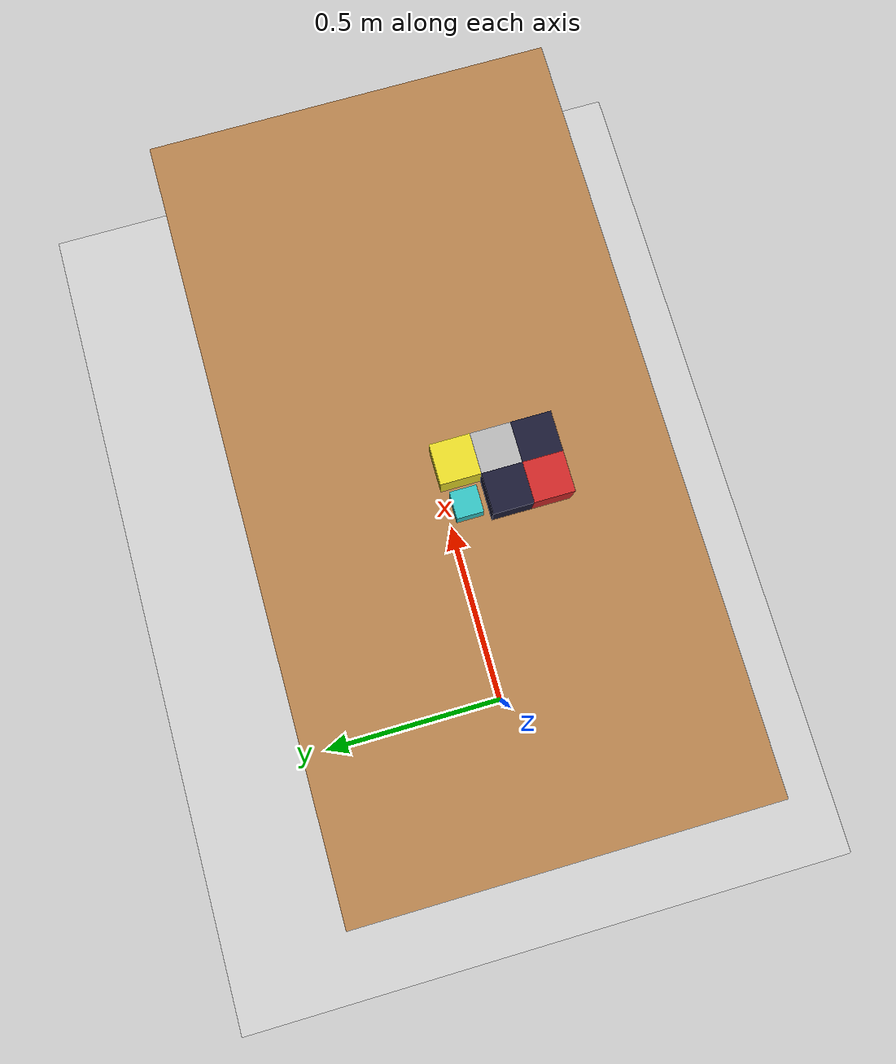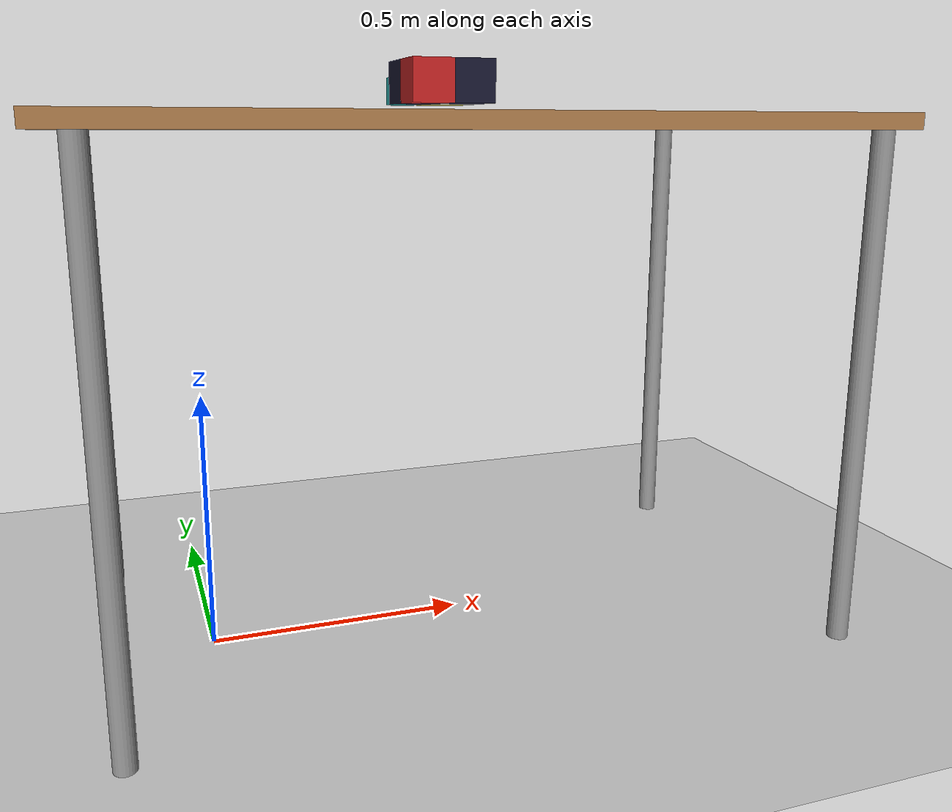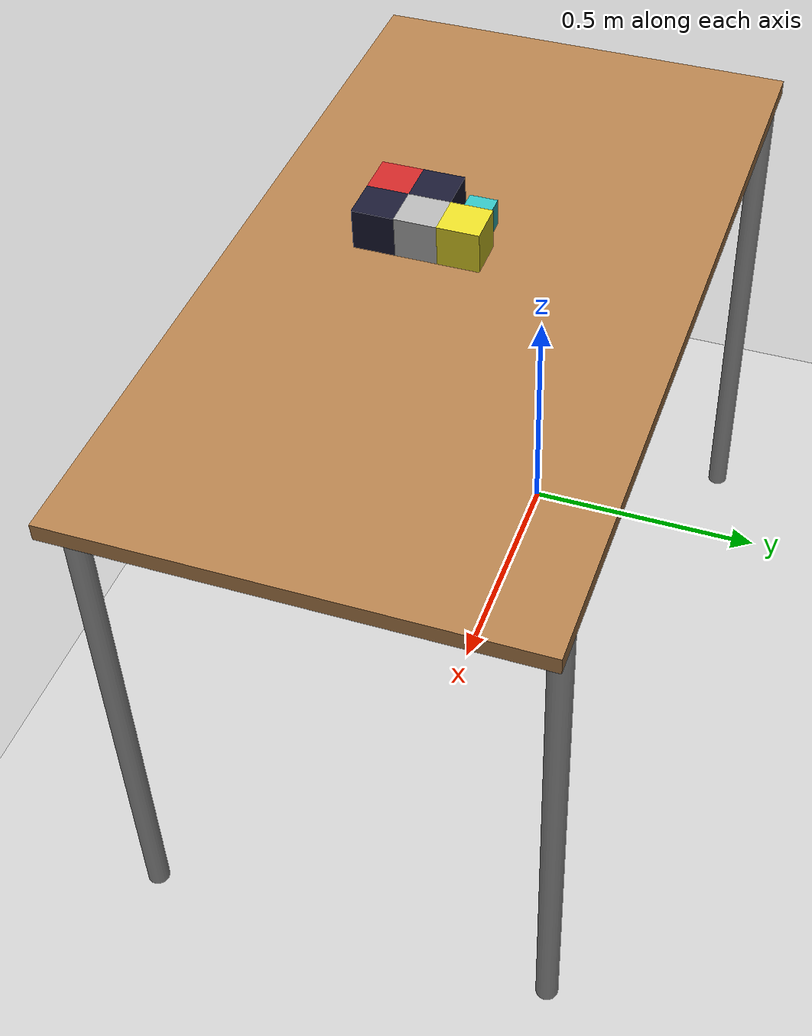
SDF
<?xml version="1.0" ?>
<sdf version="1.6">
  <world name="default">

    <light type="directional" name="light">
      <light_on>true</light_on>
      <pose>0 0 2 0 0 0</pose>
      <diffuse>0.5 0.5 0.5 1</diffuse>
      <specular>.1 .1 .1 1</specular>
      <cast_shadows>false</cast_shadows>
    </light>

    <include>
      <uri>model://ground_plane</uri>
    </include>

    <include>
      <uri>model://sun</uri>
    </include>

    <include>
      <uri>model://big_table</uri>
      <name>table</name>
      <pose>0.5 0 0 0 0 0</pose>
    </include>

    <include>
      <name>cube_red</name>
      <uri>model://colored_large_cubes/cube_red</uri>
      <pose>0.4 -0.15 1.03 0 0 0</pose>
    </include>

    <include>
      <name>cube_blue</name>
      <uri>model://colored_large_cubes/cube_blue</uri>
      <pose>0.475 -0.15 1.03 0 0 0</pose>
    </include>

    <include>
      <name>cube_indigo</name>
      <uri>model://colored_large_cubes/cube_indigo</uri>
      <pose>0.4 -0.075 1.03 0 0 0</pose>
    </include>

    <include>
      <name>cube_pink</name>
      <uri>model://colored_large_cubes/cube_pink</uri>
      <pose>0.475 -0.075 1.03 0 0 0</pose>
    </include>

    <include>
      <name>cube_turquoise</name>
      <uri>model://colored_large_cubes/cube_turquoise</uri>
      <pose>0.4 0.0 1.03 0 0 0</pose>
    </include>

    <include>
      <name>cube_yellow</name>
      <uri>model://colored_large_cubes/cube_yellow</uri>
      <pose>0.475 0.0 1.03 0 0 0</pose>
    </include>

    <physics type="ode">
      <real_time_update_rate>1000.0</real_time_update_rate>
    </physics>

    <gravity>
      0.0 0.0 -9.81
    </gravity>

    <gui fullscreen='0'>
    </gui>

  </world>
</sdf>

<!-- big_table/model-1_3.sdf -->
<sdf version="1.3">
  <model name="big_table">
    <static>true</static>
    <link name="link">
      <collision name="surface">
        <pose>0 0 1.0 0 0 0</pose>
        <geometry>
          <box>
            <size>1.5 0.8 0.03</size>
          </box>
        </geometry>
        <surface>
          <friction>
            <ode>
              <mu>0.6</mu>
              <mu2>0.6</mu2>
            </ode>
          </friction>
        </surface>
      </collision>
      <visual name="visual1">
        <pose>0 0 1.0 0 0 0</pose>
        <geometry>
          <box>
            <size>1.5 0.8 0.03</size>
          </box>
        </geometry>
        <material>
          <script>
            <uri>file://media/materials/scripts/gazebo.material</uri>
            <name>Gazebo/Wood</name>
          </script>
        </material>
      </visual>
      <collision name="front_left_leg">
        <pose>0.68 0.38 0.5 0 0 0</pose>
        <geometry>
          <cylinder>
            <radius>0.02</radius>
            <length>1.0</length>
          </cylinder>
        </geometry>
      </collision>
      <visual name="front_left_leg">
        <pose>0.68 0.38 0.5 0 0 0</pose>
        <geometry>
          <cylinder>
            <radius>0.02</radius>
            <length>1.0</length>
          </cylinder>
        </geometry>
        <material>
          <script>
            <uri>file://media/materials/scripts/gazebo.material</uri>
            <name>Gazebo/Grey</name>
          </script>
        </material>
      </visual>
      <collision name="front_right_leg">
        <pose>0.68 -0.38 0.5 0 0 0</pose>
        <geometry>
          <cylinder>
            <radius>0.02</radius>
            <length>1.0</length>
          </cylinder>
        </geometry>
      </collision>
      <visual name="front_right_leg">
        <pose>0.68 -0.38 0.5 0 0 0</pose>
        <geometry>
          <cylinder>
            <radius>0.02</radius>
            <length>1.0</length>
          </cylinder>
        </geometry>
        <material>
          <script>
            <uri>file://media/materials/scripts/gazebo.material</uri>
            <name>Gazebo/Grey</name>
          </script>
        </material>
      </visual>
      <collision name="back_right_leg">
        <pose>-0.68 -0.38 0.5 0 0 0</pose>
        <geometry>
          <cylinder>
            <radius>0.02</radius>
            <length>1.0</length>
          </cylinder>
        </geometry>
      </collision>
      <visual name="back_right_leg">
        <pose>-0.68 -0.38 0.5 0 0 0</pose>
        <geometry>
          <cylinder>
            <radius>0.02</radius>
            <length>1.0</length>
          </cylinder>
        </geometry>
        <material>
          <script>
            <uri>file://media/materials/scripts/gazebo.material</uri>
            <name>Gazebo/Grey</name>
          </script>
        </material>
      </visual>
      <collision name="back_left_leg">
        <pose>-0.68 0.38 0.5 0 0 0</pose>
        <geometry>
          <cylinder>
            <radius>0.02</radius>
            <length>1.0</length>
          </cylinder>
        </geometry>
      </collision>
      <visual name="back_left_leg">
        <pose>-0.68 0.38 0.5 0 0 0</pose>
        <geometry>
          <cylinder>
            <radius>0.02</radius>
            <length>1.0</length>
          </cylinder>
        </geometry>
        <material>
          <script>
            <uri>file://media/materials/scripts/gazebo.material</uri>
            <name>Gazebo/Grey</name>
          </script>
        </material>
      </visual>
    </link>
  </model>
</sdf>

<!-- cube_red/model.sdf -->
<sdf version="1.5">
  <model name="cube_red">
    <link name="link">
      <pose>0 0 0.0375 0 0 0</pose>
      <inertial>
        <mass>0.2249</mass>
        <inertia>
          <ixx>0.00021084374999999999</ixx>
          <ixy>0</ixy>
          <ixz>0</ixz>
          <iyy>0.00021084374999999999</iyy>
          <iyz>0</iyz>
          <izz>0.00021084374999999999</izz>
        </inertia>
      </inertial>

      <collision name="collision">
        <geometry>
          <box>
            <size>0.075 0.075 0.075</size>
          </box>
        </geometry>
        <surface>
          <contact>
            <!-- Red Pine coefficients for longitudinal axis of the wood
                 according to:
                 http://www.fpl.fs.fed.us/documnts/fplgtr/fplgtr113/ch04.pdf -->
            <poissons_ratio>0.347</poissons_ratio>
            <elastic_modulus>8.8e+09</elastic_modulus>
            <ode>
              <kp>100000</kp>
              <kd>100</kd>
              <max_vel>100.0</max_vel>
              <min_depth>0.001</min_depth>
            </ode>
          </contact>
          <friction>
            <torsional>
              <coefficient>1.0</coefficient>
              <use_patch_radius>0</use_patch_radius>
              <surface_radius>0.01</surface_radius>
            </torsional>
          </friction>
        </surface>
      </collision>

      <visual name="visual">
        <geometry>
          <box>
            <size>0.075 0.075 0.075</size>
          </box>
        </geometry>
        <material>
          <!-- Wheel material -->
          <script>
            <uri>file://media/materials/scripts/gazebo.material</uri>
            <name>Gazebo/Red</name>
          </script>
          <ambient>1 0 0 1</ambient>
          <diffuse>0.1 0.1 0.2 1</diffuse>
          <specular>0 0 0 0</specular>
          <emissive>0 0 0 1</emissive>
        </material> <!-- End wheel material -->

      </visual>

    </link>
  </model>
</sdf>

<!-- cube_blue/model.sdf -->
<sdf version="1.5">
  <model name="cube_red">
    <link name="link">
      <pose>0 0 0.0375 0 0 0</pose>
      <inertial>
        <mass>0.2249</mass>
        <inertia>
          <ixx>0.00021084374999999999</ixx>
          <ixy>0</ixy>
          <ixz>0</ixz>
          <iyy>0.00021084374999999999</iyy>
          <iyz>0</iyz>
          <izz>0.00021084374999999999</izz>
        </inertia>
      </inertial>

      <collision name="collision">
        <geometry>
          <box>
            <size>0.075 0.075 0.075</size>
          </box>
        </geometry>
        <surface>
          <contact>
            <!-- Red Pine coefficients for longitudinal axis of the wood
                 according to:
                 http://www.fpl.fs.fed.us/documnts/fplgtr/fplgtr113/ch04.pdf -->
            <poissons_ratio>0.347</poissons_ratio>
            <elastic_modulus>8.8e+09</elastic_modulus>
            <ode>
              <kp>100000</kp>
              <kd>100</kd>
              <max_vel>100.0</max_vel>
              <min_depth>0.001</min_depth>
            </ode>
          </contact>
          <friction>
            <torsional>
              <coefficient>1.0</coefficient>
              <use_patch_radius>0</use_patch_radius>
              <surface_radius>0.01</surface_radius>
            </torsional>
          </friction>
        </surface>
      </collision>

      <visual name="visual">
        <geometry>
          <box>
            <size>0.075 0.075 0.075</size>
          </box>
        </geometry>
        <material>
          <!-- Wheel material -->
          <ambient>0 0 1 1</ambient>
          <diffuse>0.1 0.1 0.2 1</diffuse>
          <specular>0 0 0 0</specular>
          <emissive>0 0 0 1</emissive>
        </material> <!-- End wheel material -->

      </visual>

    </link>
  </model>
</sdf>

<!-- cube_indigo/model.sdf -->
<sdf version="1.5">
  <model name="cube_7_5cm">
    <link name="link">
      <pose>0 0 0.0375 0 0 0</pose>
      <inertial>
        <mass>0.2249</mass>
        <inertia>
          <ixx>0.00021084374999999999</ixx>
          <ixy>0</ixy>
          <ixz>0</ixz>
          <iyy>0.00021084374999999999</iyy>
          <iyz>0</iyz>
          <izz>0.00021084374999999999</izz>
        </inertia>
      </inertial>

      <collision name="collision">
        <geometry>
          <box>
            <size>0.075 0.075 0.075</size>
          </box>
        </geometry>
        <surface>
          <contact>
            <!-- Red Pine coefficients for longitudinal axis of the wood
                 according to:
                 http://www.fpl.fs.fed.us/documnts/fplgtr/fplgtr113/ch04.pdf -->
            <poissons_ratio>0.347</poissons_ratio>
            <elastic_modulus>8.8e+09</elastic_modulus>
            <ode>
              <kp>100000</kp>
              <kd>100</kd>
              <max_vel>100.0</max_vel>
              <min_depth>0.001</min_depth>
            </ode>
          </contact>
          <friction>
            <torsional>
              <coefficient>1.0</coefficient>
              <use_patch_radius>0</use_patch_radius>
              <surface_radius>0.01</surface_radius>
            </torsional>
          </friction>
        </surface>
      </collision>

      <visual name="visual">
        <geometry>
          <box>
            <size>0.075 0.075 0.075</size>
          </box>
        </geometry>

        <material>
          <!-- Wheel material -->
          <ambient>0.352 0.031 0.650 1</ambient>
          <diffuse>0.1 0.1 0.2 1</diffuse>
          <specular>0 0 0 0</specular>
          <emissive>0 0 0 1</emissive>
        </material> <!-- End wheel material -->

      </visual>

    </link>
  </model>
</sdf>

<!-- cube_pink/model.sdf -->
<sdf version="1.5">
  <model name="cube_7_5cm">
    <link name="link">
      <pose>0 0 0.0375 0 0 0</pose>
      <inertial>
        <mass>0.2249</mass>
        <inertia>
          <ixx>0.00021084374999999999</ixx>
          <ixy>0</ixy>
          <ixz>0</ixz>
          <iyy>0.00021084374999999999</iyy>
          <iyz>0</iyz>
          <izz>0.00021084374999999999</izz>
        </inertia>
      </inertial>

      <collision name="collision">
        <geometry>
          <box>
            <size>0.075 0.075 0.075</size>
          </box>
        </geometry>
        <surface>
          <contact>
            <!-- Red Pine coefficients for longitudinal axis of the wood
                 according to:
                 http://www.fpl.fs.fed.us/documnts/fplgtr/fplgtr113/ch04.pdf -->
            <poissons_ratio>0.347</poissons_ratio>
            <elastic_modulus>8.8e+09</elastic_modulus>
            <ode>
              <kp>100000</kp>
              <kd>100</kd>
              <max_vel>100.0</max_vel>
              <min_depth>0.001</min_depth>
            </ode>
          </contact>
          <friction>
            <torsional>
              <coefficient>1.0</coefficient>
              <use_patch_radius>0</use_patch_radius>
              <surface_radius>0.01</surface_radius>
            </torsional>
          </friction>
        </surface>
      </collision>

      <visual name="visual">
        <geometry>
          <box>
            <size>0.075 0.075 0.075</size>
          </box>
        </geometry>

        <material>
          <!-- Wheel material -->
          <ambient>1 0 1 1</ambient>
          <diffuse>0.7 0.7 0.7 1</diffuse>
          <specular>0.01 0.01 0.01 1</specular>
          <emissive>0 0 0 1</emissive>
        </material> <!-- End wheel material -->

      </visual>

    </link>
  </model>
</sdf>

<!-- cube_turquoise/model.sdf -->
<sdf version="1.5">
  <model name="cube_turquoise">
    <link name="link">
      <pose>0 0 0.025 0 0 0</pose>
      <inertial>
        <mass>0.0565</mass>
        <inertia>
          <ixx>2.3541666666666672e-05</ixx>
          <ixy>0</ixy>
          <ixz>0</ixz>
          <iyy>2.3541666666666672e-05</iyy>
          <iyz>0</iyz>
          <izz>2.3541666666666672e-05</izz>
        </inertia>
      </inertial>

      <collision name="collision">
        <geometry>
          <box>
            <size>0.05 0.05 0.05</size>
          </box>
        </geometry>
        <surface>
          <contact>
            <!-- Red Pine coefficients for longitudinal axis of the wood
                 according to:
                 http://www.fpl.fs.fed.us/documnts/fplgtr/fplgtr113/ch04.pdf -->
            <poissons_ratio>0.347</poissons_ratio>
            <elastic_modulus>8.8e+09</elastic_modulus>
            <ode>
              <kp>100000</kp>
              <kd>1</kd>
              <max_vel>1.0</max_vel>
              <min_depth>0.001</min_depth>
            </ode>
          </contact>
          <friction>
            <torsional>
              <coefficient>1.0</coefficient>
              <use_patch_radius>0</use_patch_radius>
              <surface_radius>0.05</surface_radius>
            </torsional>
          </friction>
        </surface>
      </collision>

      <visual name="visual">
        <geometry>
          <box>
            <size>0.05 0.05 0.05</size>
          </box>
        </geometry>
        <material>
          <script>
            <uri>file://media/materials/scripts/gazebo.material</uri>
            <name>Gazebo/Turquoise</name>
          </script>
          <diffuse>0.7 0.7 0.7 1</diffuse>
          <specular>0.01 0.01 0.01 1</specular>
          <emissive>0 0 0 1</emissive>
        </material>
      </visual>

    </link>
  </model>
</sdf>

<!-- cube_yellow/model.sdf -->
<sdf version="1.5">
  <model name="cube_7_5cm">
    <link name="link">
      <pose>0 0 0.0375 0 0 0</pose>
      <inertial>
        <mass>0.2249</mass>
        <inertia>
          <ixx>0.00021084374999999999</ixx>
          <ixy>0</ixy>
          <ixz>0</ixz>
          <iyy>0.00021084374999999999</iyy>
          <iyz>0</iyz>
          <izz>0.00021084374999999999</izz>
        </inertia>
      </inertial>

      <collision name="collision">
        <geometry>
          <box>
            <size>0.075 0.075 0.075</size>
          </box>
        </geometry>
        <surface>
          <contact>
            <!-- Red Pine coefficients for longitudinal axis of the wood
                 according to:
                 http://www.fpl.fs.fed.us/documnts/fplgtr/fplgtr113/ch04.pdf -->
            <poissons_ratio>0.347</poissons_ratio>
            <elastic_modulus>8.8e+09</elastic_modulus>
            <ode>
              <kp>100000</kp>
              <kd>100</kd>
              <max_vel>100.0</max_vel>
              <min_depth>0.001</min_depth>
            </ode>
          </contact>
          <friction>
            <torsional>
              <coefficient>1.0</coefficient>
              <use_patch_radius>0</use_patch_radius>
              <surface_radius>0.01</surface_radius>
            </torsional>
          </friction>
        </surface>
      </collision>

      <visual name="visual">
        <geometry>
          <box>
            <size>0.075 0.075 0.075</size>
          </box>
        </geometry>

        <material>
          <!-- Wheel material -->
          <script>
            <uri>file://media/materials/scripts/gazebo.material</uri>
            <name>Gazebo/Yellow</name>
          </script>
          <ambient>1 1 0 1</ambient>
          <diffuse>0.1 0.1 0.2 1</diffuse>
          <specular>0 0 0 0</specular>
          <emissive>0 0 0 1</emissive>
        </material> <!-- End wheel material -->

      </visual>

    </link>
  </model>
</sdf>
